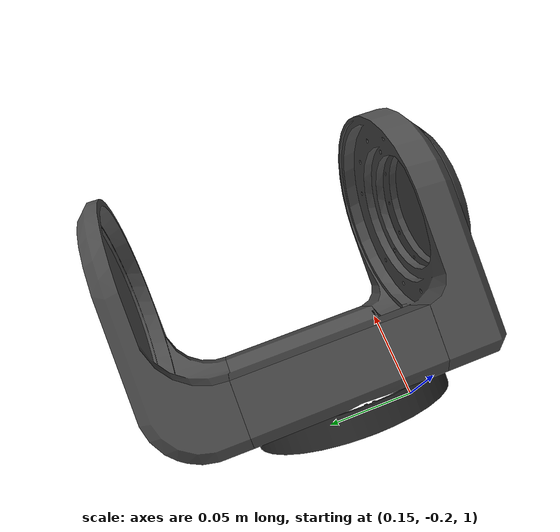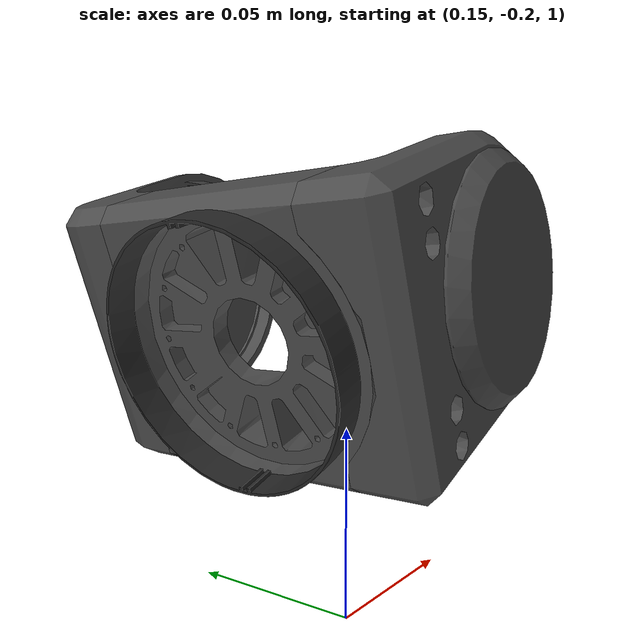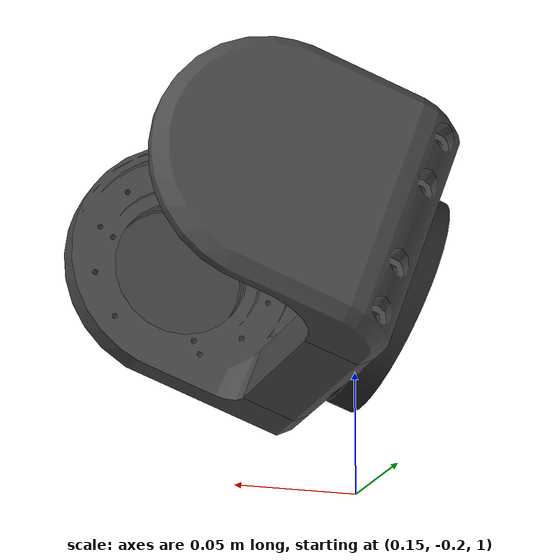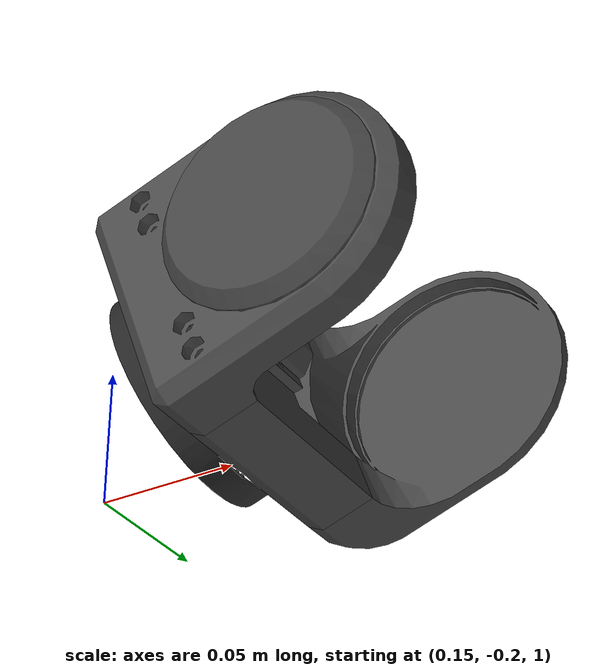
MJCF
<mujoco model="left_arm_1">
  <default>
    <default class="visual">
      <geom group="2" type="mesh" contype="0" conaffinity="0"/>
    </default>
    <default class="collision">
      <geom group="3" type="mesh"/>
    </default>
  </default>
  <asset>
    <material name="39,39,39_11.001" specular="1.0" shininess="0.2" rgba="0.152941 0.152941 0.152941 1.000000"/>
    <material name="69,69,69_8.001" specular="1.0" shininess="0.2" rgba="0.270588 0.270588 0.270588 1.000000"/>
    <material name="75,75,75_68.001" specular="1.0" shininess="0.2" rgba="0.294118 0.294118 0.294118 1.000000"/>
    <material name="75,75,75_69.001" specular="1.0" shininess="0.2" rgba="0.294118 0.294118 0.294118 1.000000"/>
    <material name="75,75,75_70.001" specular="1.0" shininess="0.2" rgba="0.294118 0.294118 0.294118 1.000000"/>
    <mesh file="left_arm_1_0.obj"/>
    <mesh file="left_arm_1_1.obj"/>
    <mesh file="left_arm_1_2.obj"/>
    <mesh file="left_arm_1_3.obj"/>
    <mesh file="left_arm_1_4.obj"/>
  </asset>
  <worldbody>
    <body name="left_arm_1">
      <geom mesh="left_arm_1_0" material="69,69,69_8.001" class="visual"/>
      <geom mesh="left_arm_1_1" material="75,75,75_70.001" class="visual"/>
      <geom mesh="left_arm_1_2" material="75,75,75_69.001" class="visual"/>
      <geom mesh="left_arm_1_3" material="75,75,75_68.001" class="visual"/>
      <geom mesh="left_arm_1_4" material="39,39,39_11.001" class="visual"/>
      <geom mesh="left_arm_1_0" class="collision"/>
      <geom mesh="left_arm_1_1" class="collision"/>
      <geom mesh="left_arm_1_2" class="collision"/>
      <geom mesh="left_arm_1_3" class="collision"/>
      <geom mesh="left_arm_1_4" class="collision"/>
    </body>
  </worldbody>
</mujoco>
